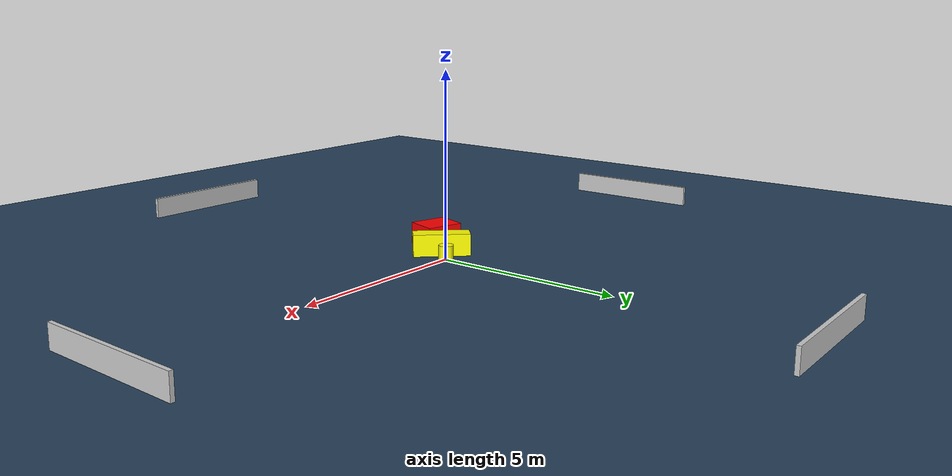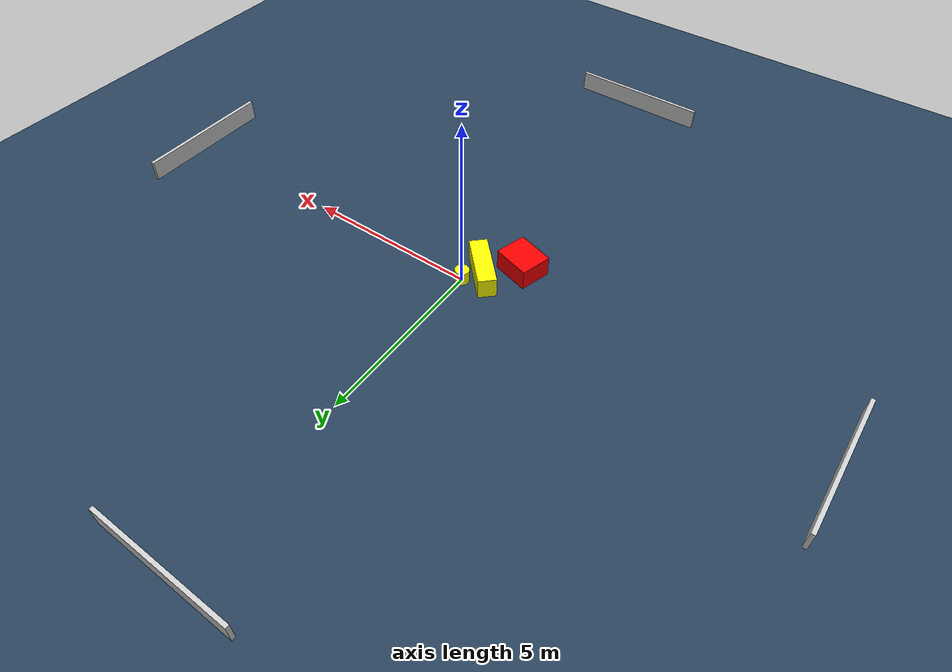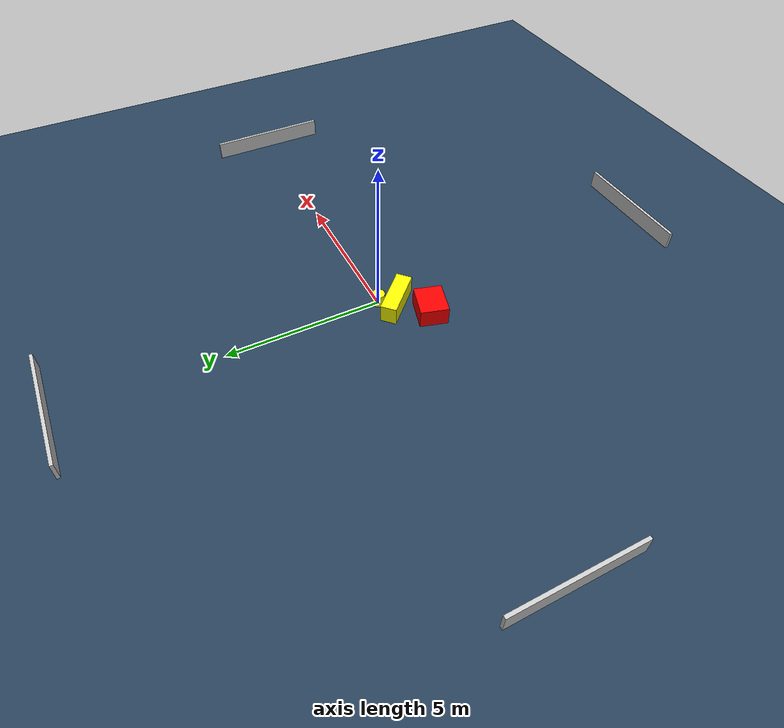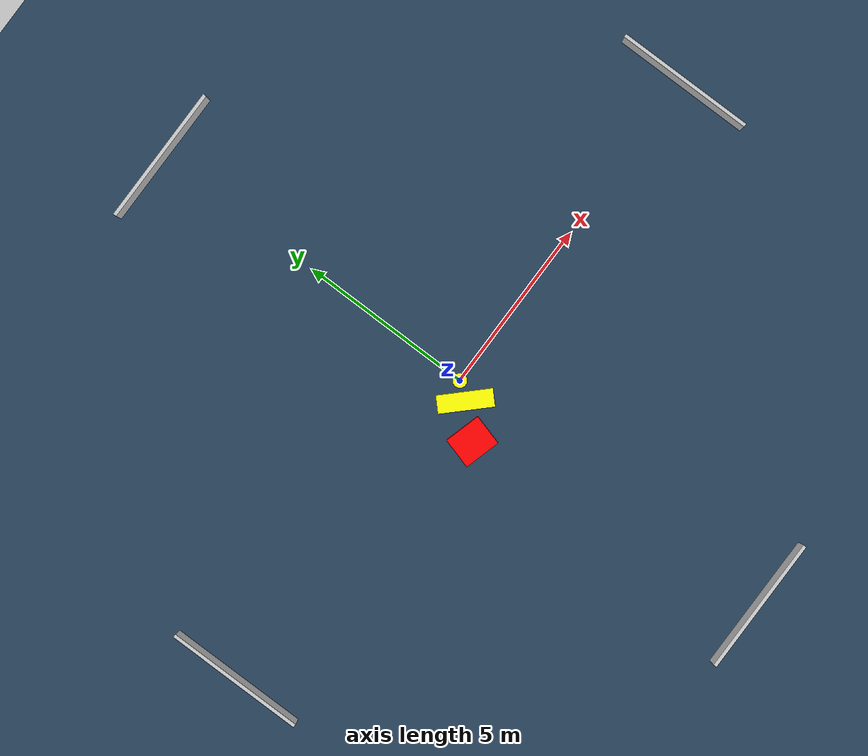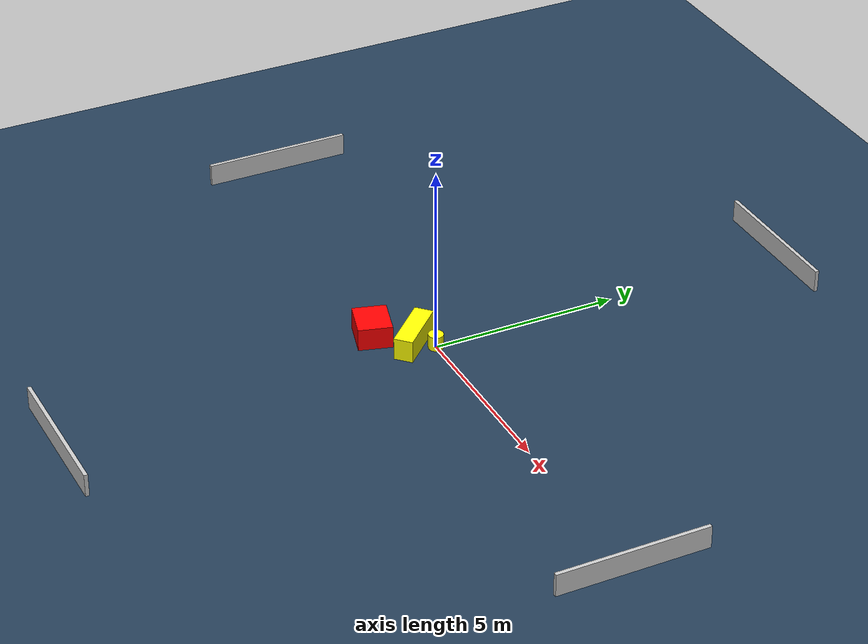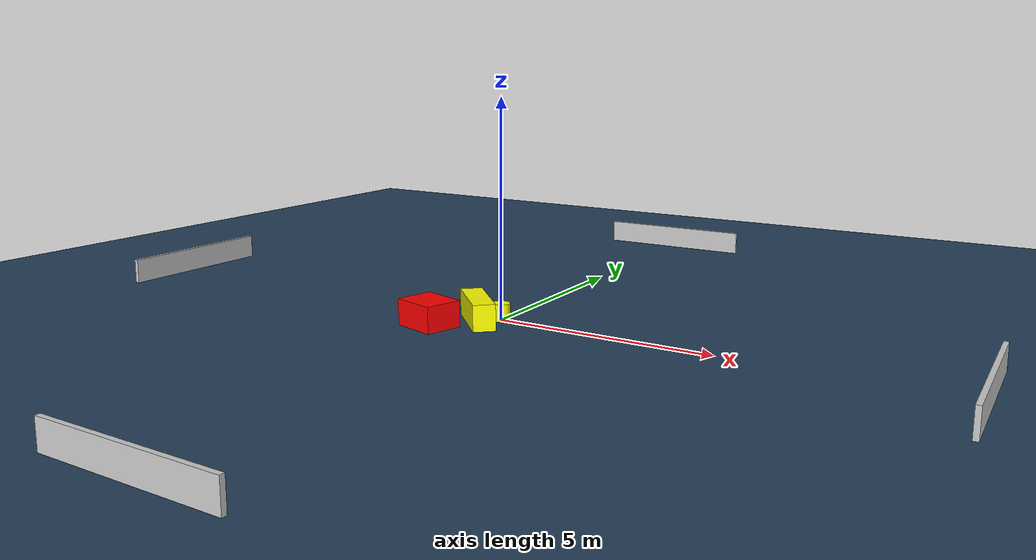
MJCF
<?xml version="1.0" ?>
<mujoco model="generated_environment">
  <option timestep="0.01" integrator="RK4" cone="elliptic"/>
  <default>
    <geom density="1"/>
  </default>
  <asset>
    <texture builtin="gradient" height="3072" name="skybox" rgb1="0.3 0.5 0.7" rgb2="0 0 0" type="skybox" width="512"/>
    <texture builtin="checker" height="300" name="groundplane" rgb1="0.2 0.3 0.4" rgb2="0.1 0.2 0.3" type="2d" width="300"/>
    <material name="groundplane" reflectance="0.2" texrepeat="5 5" texture="groundplane"/>
  </asset>
  <worldbody>
    <light dir="0 0 -1" directional="true" pos="0 0 1.5"/>
    <geom condim="3" friction="0.5 0.005 0.001" material="groundplane" name="floor" pos="0 0 0" size="0 0 0.05" type="plane"/>
    <body name="walls">
      <geom name="wall_1" condim="4" pos="-10.0 0.0 0.3" rgba="0.800000011920929 0.800000011920929 0.800000011920929 1.0" size="0.05 2.0 0.3" type="box"/>
      <geom name="wall_2" condim="4" pos="10.0 0.0 0.3" rgba="0.800000011920929 0.800000011920929 0.800000011920929 1.0" size="0.05 2.0 0.3" type="box"/>
      <geom name="wall_3" condim="4" pos="0.0 -10.0 0.3" rgba="0.800000011920929 0.800000011920929 0.800000011920929 1.0" size="2.0 0.05 0.3" type="box"/>
      <geom name="wall_4" condim="4" pos="0.0 10.0 0.3" rgba="0.800000011920929 0.800000011920929 0.800000011920929 1.0" size="2.0 0.05 0.3" type="box"/>
    </body>
    <body name="robot">
      <joint name="joint_x" type="slide" pos="0 0 0" axis="1 0 0"/>
      <joint name="joint_y" type="slide" pos="0 0 0" axis="0 1 0"/>
      <geom name="robot" type="cylinder" pos="0.0 0.0 0.2" size="0.2 0.2 0.0" mass="5.0" friction="1.0 0.005 0.0001" condim="4" rgba="1.0 1.0 0.0 1.0"/>
    </body>
    <body name="obstacle_1_movable">
      <geom name="obstacle_1_movable" condim="4" pos="-0.34702220702062236 -0.4464369495766915 0.3" euler="0 0 314.1759144163169" friction="0.0 0.005 0.001" rgba="1.0 1.0 0.0 1.0" size="0.7711051203645529 0.25177516133759964 0.3" type="box" mass="0.1"/>
      <joint type="free"/>
    </body>
    <body name="obstacle_2_static">
      <geom name="obstacle_2_static" condim="4" pos="-1.1038789653096126 -1.2455076393400628 0.3" euler="0 0 164.18868985727045" friction="0.0 0.005 0.001" rgba="1.0 0.0 0.0 1.0" size="0.5256683788368819 0.4458458706219207 0.3" type="box"/>
    </body>
  </worldbody>
  <actuator>
    <motor name="actuator_x" joint="joint_x" gear="1" ctrlrange="-1 1"/>
    <motor name="actuator_y" joint="joint_y" gear="1" ctrlrange="-1 1"/>
  </actuator>
</mujoco>
